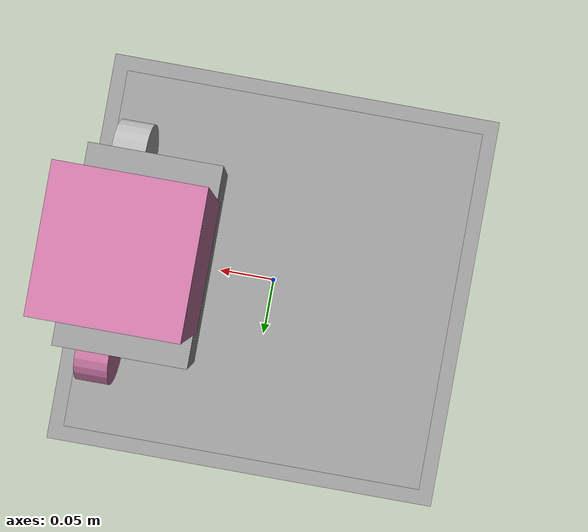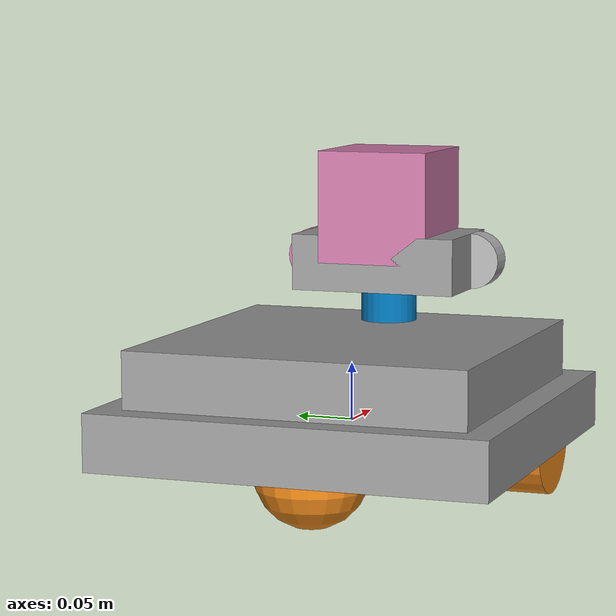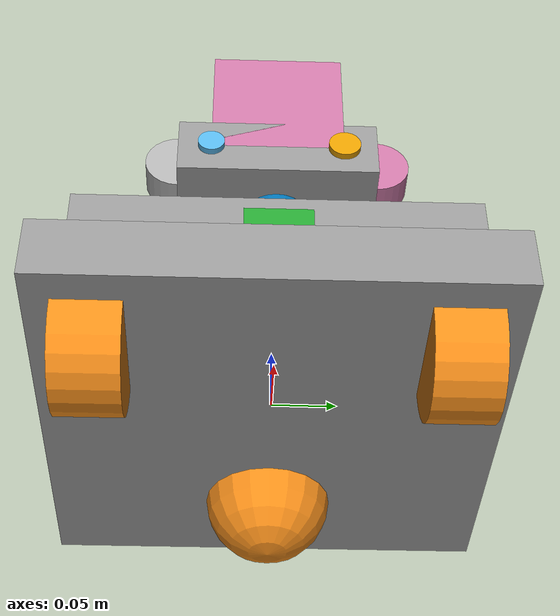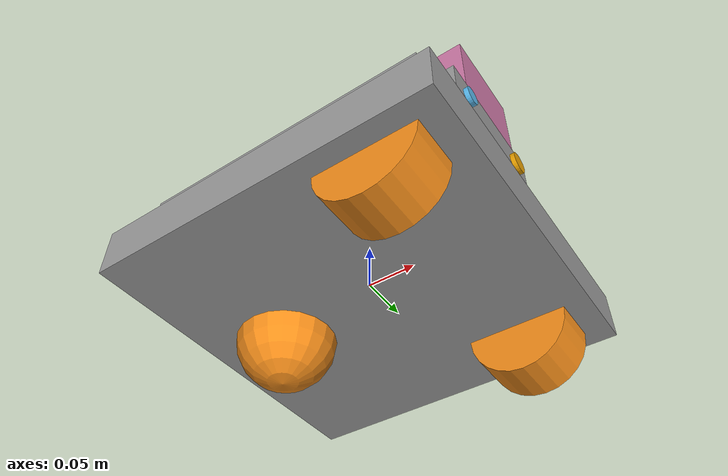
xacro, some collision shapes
<?xml version="1.0"?>

<robot name="si_bot" xmlns:xacro="http://www.ros.org/wiki/xacro">

  <xacro:include filename="$(find si_bot)/urdf/si_bot.gazebo" />

  <link name="robot_footprint"></link>

  <joint name="robot_footprint_joint" type="fixed">
    <origin xyz="0 0 0" rpy="0 0 0" />
    <parent link="robot_footprint"/>
    <child link="chassis" />
  </joint>

  <!-- ===== Chassis ===== -->

  <link name="chassis">
    <pose>0 0 0.1 0 0 0</pose>
    <inertial>
      <mass value="15.0"/>
      <origin xyz="0 0 0" rpy=" 0 0 0"/>
      <inertia
          ixx="0.1" ixy="0" ixz="0"
          iyy="0.1" iyz="0"
          izz="0.1"
      />
    </inertial>
    <collision name="chassis_collision">
      <origin xyz="0 0 0" rpy=" 0 0 0"/>
      <geometry>
        <box size=".35 .35 .05"/>
      </geometry>
    </collision>
    <visual name="chassis_visual">
      <origin xyz="0 0 0" rpy=" 0 0 0"/>
      <geometry>
        <box size=".35 .35 .05"/>
      </geometry>
    </visual>
  </link>

  <joint name="back_caster_wheel_fixed" type="fixed">
    <origin xyz="-0.1 0.0 -0.025" rpy="0 0 0"/>
    <child link="back_caster_wheel"/>
    <parent link="chassis" />
  </joint>
  <link name="back_caster_wheel">
      <inertial>
        <mass value="0.1"/>
        <origin xyz="0.0 0 0" rpy=" 0 0 0"/>
        <inertia
            ixx="1e-6" ixy="0" ixz="0"
            iyy="1e-6" iyz="0"
            izz="1e-6"
        />
      </inertial>
      <collision>
        <origin xyz="0 0 0" rpy="0 0 0"/>
        <geometry>
          <sphere radius="0.05"/>
        </geometry>
        <surface>
          <friction>
            <ode>
              <mu>0</mu>
              <mu2>0</mu2>
              <slip1>1.0</slip1>
              <slip2>1.0</slip2>
            </ode>
          </friction>
        </surface>
      </collision>
      <visual>
        <origin xyz="0 0 0" rpy="0 0 0"/>
        <geometry>
          <sphere radius="0.05"/>
        </geometry>
      </visual>
  </link>

  <joint name="dome0_fixed" type="fixed">
    <origin xyz="0 0 0.05" rpy="0 0 0"/>
    <child link="dome0"/>
    <parent link="chassis" />
  </joint>
  <link name="dome0">
      <inertial>
        <mass value="0.1"/>
        <origin xyz="0.0 0 0" rpy=" 0 0 0"/>
        <inertia
            ixx="1e-6" ixy="0" ixz="0"
            iyy="1e-6" iyz="0"
            izz="1e-6"
        />
      </inertial>
      <collision>
        <origin xyz="0 0 0" rpy="0 0 0"/>
        <geometry>
          <box size="0.3 0.3 0.05"/>
        </geometry>
        <surface>
          <friction>
            <ode>
              <mu>0</mu>
              <mu2>0</mu2>
              <slip1>1.0</slip1>
              <slip2>1.0</slip2>
            </ode>
          </friction>
        </surface>
      </collision>
      <visual>
        <origin xyz="0 0 0" rpy="0 0 0"/>
        <geometry>
          <box size="0.3 0.3 0.05"/>
        </geometry>
      </visual>
  </link>

  <!-- head stand -->

  <joint name="stand_fixed" type="fixed">
    <origin xyz="0.1 0 0.040" rpy="0 0 0"/>
    <child link="stand"/>
    <parent link="dome0" />
  </joint>
  <link name="stand">
      <inertial>
        <mass value="0.01"/>
        <origin xyz="0.0 0 0" rpy=" 0 0 0"/>
        <inertia
            ixx="1e-7" ixy="0" ixz="0"
            iyy="1e-7" iyz="0"
            izz="1e-7"
        />
      </inertial>
      <collision>
        <origin xyz="0 0 0" rpy="0 0 0"/>
        <geometry>
          <cylinder radius=".025" length="0.03"/>
        </geometry>
        <surface>
          <friction>
            <ode>
              <mu>0</mu>
              <mu2>0</mu2>
              <slip1>1.0</slip1>
              <slip2>1.0</slip2>
            </ode>
          </friction>
        </surface>
      </collision>
      <visual>
        <origin xyz="0 0 0" rpy="0 0 0"/>
        <geometry>
          <cylinder radius=".025" length="0.03"/>
        </geometry>
      </visual>
  </link>

  <joint name="dome1_fixed" type="fixed">
    <origin xyz="0 0 0.04" rpy="0 0 0"/>
    <child link="dome1"/>
    <parent link="stand" />
  </joint>
  <link name="dome1">
      <inertial>
        <mass value="0.1"/>
        <origin xyz="0.0 0 0" rpy=" 0 0 0"/>
        <inertia
            ixx="1e-6" ixy="0" ixz="0"
            iyy="1e-6" iyz="0"
            izz="1e-6"
        />
      </inertial>
      <collision>
        <origin xyz="0 0 0" rpy="0 0 0"/>
        <geometry>
          <box size="0.1 0.15 0.05"/>
        </geometry>
        <surface>
          <friction>
            <ode>
              <mu>0</mu>
              <mu2>0</mu2>
              <slip1>1.0</slip1>
              <slip2>1.0</slip2>
            </ode>
          </friction>
        </surface>
      </collision>
      <visual>
        <origin xyz="0 0 0" rpy="0 0 0"/>
        <geometry>
          <box size="0.1 0.15 0.05"/>
        </geometry>
      </visual>
  </link>

  <!-- ======= Ears ================= -->

  <joint name="left_ear_fixed" type="fixed">
    <origin xyz="0.02 0.075 0" rpy="0 0 0"/>
    <child link="left_ear"/>
    <parent link="dome1" />
  </joint>
  <link name="left_ear">
      <inertial>
        <mass value="0.01"/>
        <origin xyz="0.0 0 0" rpy=" 0 0 0"/>
        <inertia
            ixx="1e-7" ixy="0" ixz="0"
            iyy="1e-7" iyz="0"
            izz="1e-7"
        />
      </inertial>
      <collision>
        <origin xyz="0 0 0" rpy="0 1.5707 0"/>
        <geometry>
          <cylinder radius="0.025" length="0.025"/>
        </geometry>
        <surface>
          <friction>
            <ode>
              <mu>0</mu>
              <mu2>0</mu2>
              <slip1>1.0</slip1>
              <slip2>1.0</slip2>
            </ode>
          </friction>
        </surface>
      </collision>
      <visual>
        <origin xyz="0 0 0" rpy="0 1.5707 0"/>
        <geometry>
          <cylinder radius="0.025" length="0.025"/>
        </geometry>
      </visual>
  </link>

  <joint name="right_ear_fixed" type="fixed">
    <origin xyz="0.02 -0.075 0" rpy="0 0 0"/>
    <child link="right_ear"/>
    <parent link="dome1" />
  </joint>
  <link name="right_ear">
      <inertial>
        <mass value="0.01"/>
        <origin xyz="0.0 0 0" rpy=" 0 0 0"/>
        <inertia
            ixx="1e-7" ixy="0" ixz="0"
            iyy="1e-7" iyz="0"
            izz="1e-7"
        />
      </inertial>
      <collision>
        <origin xyz="0 0 0" rpy="0 1.5707 0"/>
        <geometry>
          <cylinder radius="0.025" length="0.025"/>
        </geometry>
        <surface>
          <friction>
            <ode>
              <mu>0</mu>
              <mu2>0</mu2>
              <slip1>1.0</slip1>
              <slip2>1.0</slip2>
            </ode>
          </friction>
        </surface>
      </collision>
      <visual>
        <origin xyz="0 0 0" rpy="0 1.5707 0"/>
        <geometry>
          <cylinder radius="0.025" length="0.025"/>
        </geometry>
      </visual>
  </link>

  <!-- ======= Eyes =============== -->

  <joint name="left_eye_fixed" type="fixed">
    <origin xyz="0.05 0.05 0" rpy="0 0 0"/>
    <child link="left_eye"/>
    <parent link="dome1" />
  </joint>
  <link name="left_eye">
      <inertial>
        <mass value="0.01"/>
        <origin xyz="0.0 0 0" rpy=" 0 0 0"/>
        <inertia
            ixx="1e-7" ixy="0" ixz="0"
            iyy="1e-7" iyz="0"
            izz="1e-7"
        />
      </inertial>
      <collision>
        <origin xyz="0 0 0" rpy="0 1.5707 0"/>
        <geometry>
          <cylinder radius="0.012" length="0.01"/>
        </geometry>
        <surface>
          <friction>
            <ode>
              <mu>0</mu>
              <mu2>0</mu2>
              <slip1>1.0</slip1>
              <slip2>1.0</slip2>
            </ode>
          </friction>
        </surface>
      </collision>
      <visual>
        <origin xyz="0 0 0" rpy="0 1.5707 0"/>
        <geometry>
          <cylinder radius="0.012" length="0.01"/>
        </geometry>
      </visual>
  </link>

  <joint name="right_eye_fixed" type="fixed">
    <origin xyz="0.05 -0.05 0" rpy="0 0 0"/>
    <child link="right_eye"/>
    <parent link="dome1" />
  </joint>
  <link name="right_eye">
      <inertial>
        <mass value="0.01"/>
        <origin xyz="0.0 0 0" rpy=" 0 0 0"/>
        <inertia
            ixx="1e-7" ixy="0" ixz="0"
            iyy="1e-7" iyz="0"
            izz="1e-7"
        />
      </inertial>
      <collision>
        <origin xyz="0 0 0" rpy="0 1.5707 0"/>
        <geometry>
          <cylinder radius="0.01" length="0.01"/>
        </geometry>
        <surface>
          <friction>
            <ode>
              <mu>0</mu>
              <mu2>0</mu2>
              <slip1>1.0</slip1>
              <slip2>1.0</slip2>
            </ode>
          </friction>
        </surface>
      </collision>
      <visual>
        <origin xyz="0 0 0" rpy="0 1.5707 0"/>
        <geometry>
          <cylinder radius="0.01" length="0.01"/>
        </geometry>
      </visual>
  </link>

  <!-- ====== Wheels ============= -->

  <joint name="left_wheel_hinge" type="continuous">
    <origin xyz="0.1 0.13 -0.025" rpy="0 0 0"/>
    <child link="left_wheel"/>
    <parent link="chassis" />
    <axis xyz="0 1 0" rpy="0 0 0" />
    <limit effort="10000" velocity="1000" />
    <joint_properties damping="1.0" friction="1.0" />
  </joint>
  <link name="left_wheel">
    <inertial>
      <mass value="5.0"/>
      <origin xyz="0.0 0 0" rpy=" 0 0 0"/>
      <inertia
          ixx="0.1" ixy="0" ixz="0"
          iyy="0.1" iyz="0"
          izz="0.1"
      />
    </inertial>
    <collision>
      <origin xyz="0 0 0" rpy="1.5707 0 0"/>
      <geometry>
        <cylinder radius=".05" length="0.05"/>
      </geometry>
    </collision>
    <visual>
      <origin xyz="0 0 0" rpy="1.5707 0 0"/>
      <geometry>
        <cylinder radius="0.05" length="0.05"/>
      </geometry>
    </visual>
  </link>

  <joint name="right_wheel_hinge" type="continuous">
    <origin xyz="0.1 -0.13 -0.025" rpy="0 0 0"/>
    <child link="right_wheel"/>
    <parent link="chassis" />
    <axis xyz="0 1 0" rpy="0 0 0" />
    <limit effort="10000" velocity="1000" />
    <joint_properties damping="1.0" friction="1.0" />
  </joint>
  <link name="right_wheel">
    <inertial>
      <mass value="5.0"/>
      <origin xyz="0.0 0 0" rpy=" 0 0 0"/>
      <inertia
          ixx="0.1" ixy="0" ixz="0"
          iyy="0.1" iyz="0"
          izz="0.1"
      />
    </inertial>
    <collision>
      <origin xyz="0 0 0" rpy="1.5707 0 0"/>
      <geometry>
        <cylinder radius=".05" length="0.05"/>
      </geometry>
    </collision>
    <visual>
      <origin xyz="0 0 0" rpy="1.5707 0 0"/>
      <geometry>
        <cylinder radius="0.05" length="0.05"/>
      </geometry>
    </visual>
  </link>

  <!-- ====== Camera ============= -->

  <joint name="camera_joint" type="fixed">
    <origin xyz="0.135 0 0.03" rpy="0 0 0" />
    <child link="camera" />
    <parent link="chassis" />
  </joint>
  <link name="camera">
    <inertial>
      <mass value="0.1"/>
      <origin xyz="0.0 0 0" rpy=" 0 0 0"/>
      <inertia
          ixx="1e-6" ixy="0" ixz="0"
          iyy="1e-6" iyz="0"
          izz="1e-6"
      />
    </inertial>
    <collision>
      <origin xyz="0 0 0" rpy=" 0 0 0"/>
      <geometry>
        <box size="0.05 0.05 0.05" />
      </geometry>
    </collision>
    <visual>
      <origin xyz="0 0 0" rpy=" 0 0 0"/>
      <geometry>
        <box size="0.05 0.05 0.05" />
      </geometry>
    </visual>
  </link>

  <!-- Fix for rotated point cloud -->
  <joint name="camera_link_joint" type="fixed">
    <origin xyz="0 0 0" rpy="-1.5707 0 -1.5707" />
    <child link="camera_link" />
    <parent link="camera" />
  </joint>
  <link name="camera_link"></link>

  <!-- ======= Laser Rangefinder ======= -->

  <joint name="hokuyo_joint" type="fixed">
    <origin xyz="0 0 .05" />
    <child link="hokuyo" />
    <parent link="dome1" />
  </joint>
  <link name="hokuyo">
    <inertial>
      <mass value="0.1"/>
      <origin xyz="0.0 0 0" rpy=" 0 0 0"/>
      <inertia
          ixx="1e-6" ixy="0" ixz="0"
          iyy="1e-6" iyz="0"
          izz="1e-6"
      />
    </inertial>
    <collision>
      <origin xyz="0 0 0" rpy="0 0 0"/>
      <geometry>
        <box size="0.1 0.1 0.1" />
      </geometry>
    </collision>
    <visual>
      <origin xyz="0 0 -0.025" rpy="0 0 0"/>
      <geometry>
        <mesh filename="package://si_bot/meshes/hokuyo.dae" />
      </geometry>
    </visual>
  </link>

</robot>
